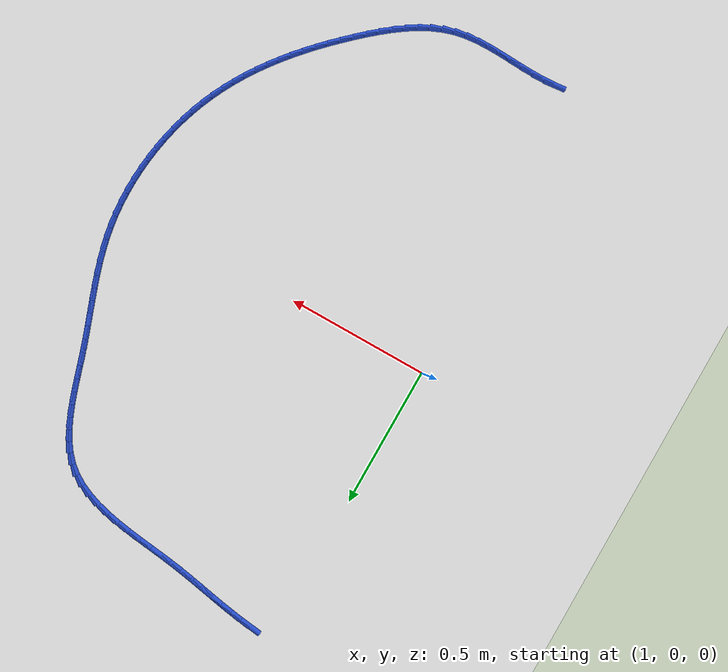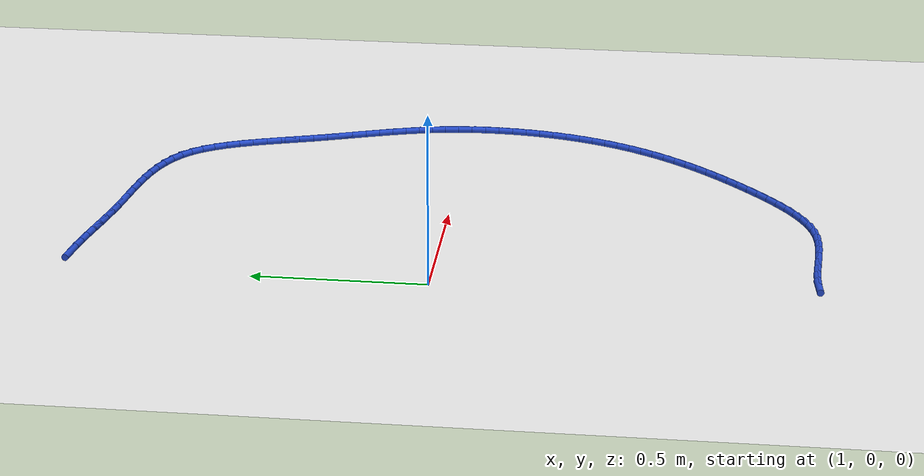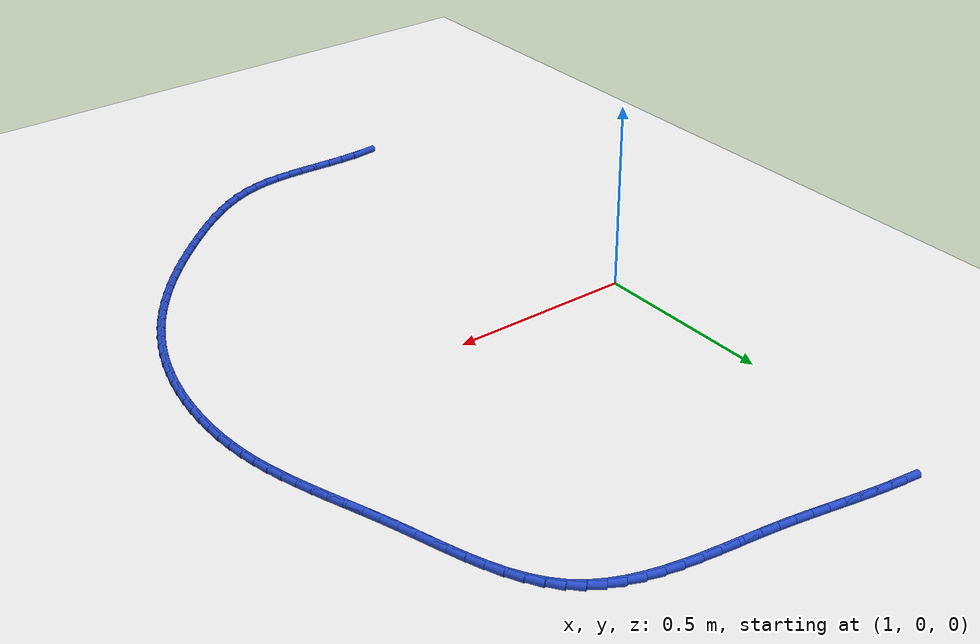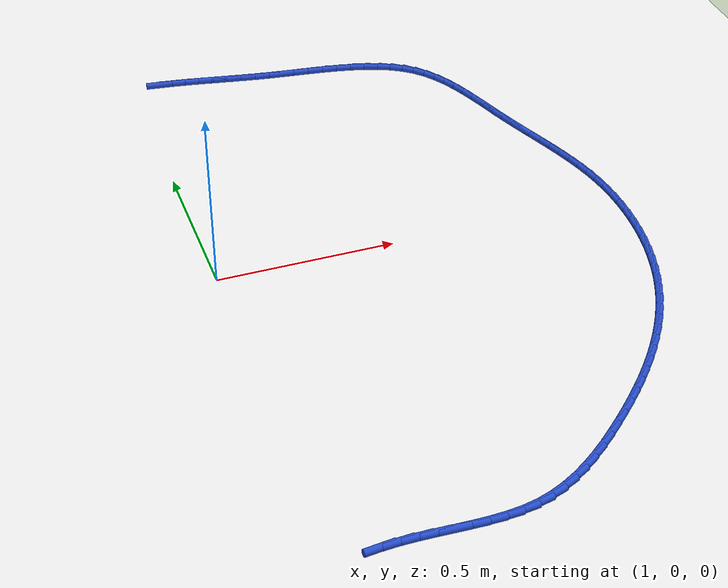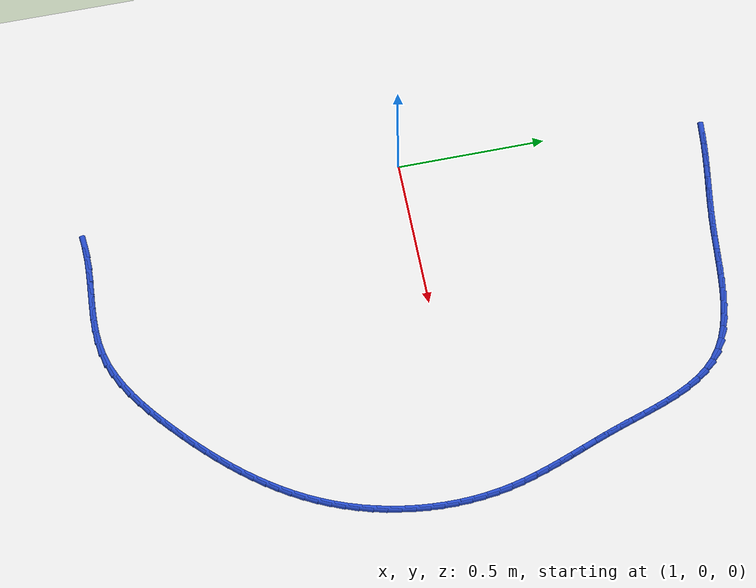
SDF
<sdf version="1.6">
 <world name="default">
  <model name="ground_plane">
   <static>1</static>
   <link name="link">
    <collision name="collision">
     <geometry><plane><normal>0 0 1</normal><size>100 100</size></plane></geometry>
     <surface><friction><ode><mu>100</mu><mu2>50</mu2></ode></friction></surface>
    </collision>
    <visual name="visual">
     <cast_shadows>0</cast_shadows>
     <geometry><plane><normal>0 0 1</normal><size>100 100</size></plane></geometry>
     <material>
      <script><uri>file://media/materials/scripts/gazebo.material</uri><name>Gazebo/WhiteGlow</name></script>
     </material>
    </visual>
   </link>
  </model>
  <model name="line">
   <link name="link_40">
    <pose>1.083983487072007 1.0317512045905965 0.01 0 1.57 -0.12247822357086942</pose>
    <collision name="collision">
     <geometry><cylinder><radius>0.01</radius><length>0.08</length></cylinder></geometry>
    </collision>
    <visual name="visual">
     <material>
      <script><name>Gazebo/Blue</name><uri>file://media/materials/scripts/gazebo.material</uri></script>
     </material>
     <geometry><cylinder><radius>0.01</radius><length>0.08</length></cylinder></geometry>
    </visual>
   </link>
   <link name="link_41">
    <pose>1.125646442639785 1.02662273018511 0.01 0 1.57 -0.1500103768400907</pose>
    <collision name="collision">
     <geometry><cylinder><radius>0.01</radius><length>0.08</length></cylinder></geometry>
    </collision>
    <visual name="visual">
     <material>
      <script><name>Gazebo/Blue</name><uri>file://media/materials/scripts/gazebo.material</uri></script>
     </material>
     <geometry><cylinder><radius>0.01</radius><length>0.08</length></cylinder></geometry>
    </visual>
   </link>
   <link name="link_42">
    <pose>1.1671397648547246 1.0203511874789246 0.01 0 1.57 -0.16982790035343945</pose>
    <collision name="collision">
     <geometry><cylinder><radius>0.01</radius><length>0.08</length></cylinder></geometry>
    </collision>
    <visual name="visual">
     <material>
      <script><name>Gazebo/Blue</name><uri>file://media/materials/scripts/gazebo.material</uri></script>
     </material>
     <geometry><cylinder><radius>0.01</radius><length>0.08</length></cylinder></geometry>
    </visual>
   </link>
   <link name="link_43">
    <pose>1.2086384210378591 1.01323501216494 0.01 0 1.57 -0.18181214256237524</pose>
    <collision name="collision">
     <geometry><cylinder><radius>0.01</radius><length>0.08</length></cylinder></geometry>
    </collision>
    <visual name="visual">
     <material>
      <script><name>Gazebo/Blue</name><uri>file://media/materials/scripts/gazebo.material</uri></script>
     </material>
     <geometry><cylinder><radius>0.01</radius><length>0.08</length></cylinder></geometry>
    </visual>
   </link>
   <link name="link_44">
    <pose>1.2503173876569167 1.0055726552251478 0.01 0 1.57 -0.18600665311869785</pose>
    <collision name="collision">
     <geometry><cylinder><radius>0.01</radius><length>0.08</length></cylinder></geometry>
    </collision>
    <visual name="visual">
     <material>
      <script><name>Gazebo/Blue</name><uri>file://media/materials/scripts/gazebo.material</uri></script>
     </material>
     <geometry><cylinder><radius>0.01</radius><length>0.08</length></cylinder></geometry>
    </visual>
   </link>
   <link name="link_45">
    <pose>1.292351641179624 0.9976625676415394 0.01 0 1.57 -0.18258944699541996</pose>
    <collision name="collision">
     <geometry><cylinder><radius>0.01</radius><length>0.08</length></cylinder></geometry>
    </collision>
    <visual name="visual">
     <material>
      <script><name>Gazebo/Blue</name><uri>file://media/materials/scripts/gazebo.material</uri></script>
     </material>
     <geometry><cylinder><radius>0.01</radius><length>0.08</length></cylinder></geometry>
    </visual>
   </link>
   <link name="link_46">
    <pose>1.3349161580737092 0.9898032003961066 0.01 0 1.57 -0.17185477720959072</pose>
    <collision name="collision">
     <geometry><cylinder><radius>0.01</radius><length>0.08</length></cylinder></geometry>
    </collision>
    <visual name="visual">
     <material>
      <script><name>Gazebo/Blue</name><uri>file://media/materials/scripts/gazebo.material</uri></script>
     </material>
     <geometry><cylinder><radius>0.01</radius><length>0.08</length></cylinder></geometry>
    </visual>
   </link>
   <link name="link_47">
    <pose>1.3781859148068998 0.9822930044708411 0.01 0 1.57 -0.15420377702841706</pose>
    <collision name="collision">
     <geometry><cylinder><radius>0.01</radius><length>0.08</length></cylinder></geometry>
    </collision>
    <visual name="visual">
     <material>
      <script><name>Gazebo/Blue</name><uri>file://media/materials/scripts/gazebo.material</uri></script>
     </material>
     <geometry><cylinder><radius>0.01</radius><length>0.08</length></cylinder></geometry>
    </visual>
   </link>
   <link name="link_48">
    <pose>1.4223358878469228 0.975430430847734 0.01 0 1.57 -0.13317774749445782</pose>
    <collision name="collision">
     <geometry><cylinder><radius>0.01</radius><length>0.08</length></cylinder></geometry>
    </collision>
    <visual name="visual">
     <material>
      <script><name>Gazebo/Blue</name><uri>file://media/materials/scripts/gazebo.material</uri></script>
     </material>
     <geometry><cylinder><radius>0.01</radius><length>0.08</length></cylinder></geometry>
    </visual>
   </link>
   <link name="link_49">
    <pose>1.4674420356015716 0.9693875271003631 0.01 0 1.57 -0.12176923726375755</pose>
    <collision name="collision">
     <geometry><cylinder><radius>0.01</radius><length>0.08</length></cylinder></geometry>
    </collision>
    <visual name="visual">
     <material>
      <script><name>Gazebo/Blue</name><uri>file://media/materials/scripts/gazebo.material</uri></script>
     </material>
     <geometry><cylinder><radius>0.01</radius><length>0.08</length></cylinder></geometry>
    </visual>
   </link>
   <link name="link_50">
    <pose>1.5131550162277354 0.9637934155889678 0.01 0 1.57 -0.12284945178763806</pose>
    <collision name="collision">
     <geometry><cylinder><radius>0.01</radius><length>0.08</length></cylinder></geometry>
    </collision>
    <visual name="visual">
     <material>
      <script><name>Gazebo/Blue</name><uri>file://media/materials/scripts/gazebo.material</uri></script>
     </material>
     <geometry><cylinder><radius>0.01</radius><length>0.08</length></cylinder></geometry>
    </visual>
   </link>
   <link name="link_51">
    <pose>1.5590113245453074 0.9581314812707133 0.01 0 1.57 -0.13632321833527564</pose>
    <collision name="collision">
     <geometry><cylinder><radius>0.01</radius><length>0.08</length></cylinder></geometry>
    </collision>
    <visual name="visual">
     <material>
      <script><name>Gazebo/Blue</name><uri>file://media/materials/scripts/gazebo.material</uri></script>
     </material>
     <geometry><cylinder><radius>0.01</radius><length>0.08</length></cylinder></geometry>
    </visual>
   </link>
   <link name="link_52">
    <pose>1.604547453953074 0.9518851072886262 0.01 0 1.57 -0.16272768667551943</pose>
    <collision name="collision">
     <geometry><cylinder><radius>0.01</radius><length>0.08</length></cylinder></geometry>
    </collision>
    <visual name="visual">
     <material>
      <script><name>Gazebo/Blue</name><uri>file://media/materials/scripts/gazebo.material</uri></script>
     </material>
     <geometry><cylinder><radius>0.01</radius><length>0.08</length></cylinder></geometry>
    </visual>
   </link>
   <link name="link_53">
    <pose>1.6492998978498241 0.9445376767857319 0.01 0 1.57 -0.20322471222318544</pose>
    <collision name="collision">
     <geometry><cylinder><radius>0.01</radius><length>0.08</length></cylinder></geometry>
    </collision>
    <visual name="visual">
     <material>
      <script><name>Gazebo/Blue</name><uri>file://media/materials/scripts/gazebo.material</uri></script>
     </material>
     <geometry><cylinder><radius>0.01</radius><length>0.08</length></cylinder></geometry>
    </visual>
   </link>
   <link name="link_54">
    <pose>1.6928051496343446 0.9355725729050577 0.01 0 1.57 -0.2595785811376601</pose>
    <collision name="collision">
     <geometry><cylinder><radius>0.01</radius><length>0.08</length></cylinder></geometry>
    </collision>
    <visual name="visual">
     <material>
      <script><name>Gazebo/Blue</name><uri>file://media/materials/scripts/gazebo.material</uri></script>
     </material>
     <geometry><cylinder><radius>0.01</radius><length>0.08</length></cylinder></geometry>
    </visual>
   </link>
   <link name="link_55">
    <pose>1.7345997027054234 0.9244731787896288 0.01 0 1.57 -0.3340456842501688</pose>
    <collision name="collision">
     <geometry><cylinder><radius>0.01</radius><length>0.08</length></cylinder></geometry>
    </collision>
    <visual name="visual">
     <material>
      <script><name>Gazebo/Blue</name><uri>file://media/materials/scripts/gazebo.material</uri></script>
     </material>
     <geometry><cylinder><radius>0.01</radius><length>0.08</length></cylinder></geometry>
    </visual>
   </link>
   <link name="link_56">
    <pose>1.7742200504618484 0.9107228775824721 0.01 0 1.57 -0.4290346965300316</pose>
    <collision name="collision">
     <geometry><cylinder><radius>0.01</radius><length>0.08</length></cylinder></geometry>
    </collision>
    <visual name="visual">
     <material>
      <script><name>Gazebo/Blue</name><uri>file://media/materials/scripts/gazebo.material</uri></script>
     </material>
     <geometry><cylinder><radius>0.01</radius><length>0.08</length></cylinder></geometry>
    </visual>
   </link>
   <link name="link_57">
    <pose>1.8112026863024073 0.8938050524266137 0.01 0 1.57 -0.5463255784357631</pose>
    <collision name="collision">
     <geometry><cylinder><radius>0.01</radius><length>0.08</length></cylinder></geometry>
    </collision>
    <visual name="visual">
     <material>
      <script><name>Gazebo/Blue</name><uri>file://media/materials/scripts/gazebo.material</uri></script>
     </material>
     <geometry><cylinder><radius>0.01</radius><length>0.08</length></cylinder></geometry>
    </visual>
   </link>
   <link name="link_58">
    <pose>1.8450841036258883 0.8732030864650793 0.01 0 1.57 -0.6856668858034809</pose>
    <collision name="collision">
     <geometry><cylinder><radius>0.01</radius><length>0.08</length></cylinder></geometry>
    </collision>
    <visual name="visual">
     <material>
      <script><name>Gazebo/Blue</name><uri>file://media/materials/scripts/gazebo.material</uri></script>
     </material>
     <geometry><cylinder><radius>0.01</radius><length>0.08</length></cylinder></geometry>
    </visual>
   </link>
   <link name="link_59">
    <pose>1.8754014627115032 0.8484011439334741 0.01 0 1.57 -0.8335406833218331</pose>
    <collision name="collision">
     <geometry><cylinder><radius>0.01</radius><length>0.08</length></cylinder></geometry>
    </collision>
    <visual name="visual">
     <material>
      <script><name>Gazebo/Blue</name><uri>file://media/materials/scripts/gazebo.material</uri></script>
     </material>
     <geometry><cylinder><radius>0.01</radius><length>0.08</length></cylinder></geometry>
    </visual>
   </link>
   <link name="link_60">
    <pose>1.9019408674390639 0.8191749675743611 0.01 0 1.57 -0.9607762577123368</pose>
    <collision name="collision">
     <geometry><cylinder><radius>0.01</radius><length>0.08</length></cylinder></geometry>
    </collision>
    <visual name="visual">
     <material>
      <script><name>Gazebo/Blue</name><uri>file://media/materials/scripts/gazebo.material</uri></script>
     </material>
     <geometry><cylinder><radius>0.01</radius><length>0.08</length></cylinder></geometry>
    </visual>
   </link>
   <link name="link_61">
    <pose>1.9251092667372205 0.7860274731604934 0.01 0 1.57 -1.06271174624357</pose>
    <collision name="collision">
     <geometry><cylinder><radius>0.01</radius><length>0.08</length></cylinder></geometry>
    </collision>
    <visual name="visual">
     <material>
      <script><name>Gazebo/Blue</name><uri>file://media/materials/scripts/gazebo.material</uri></script>
     </material>
     <geometry><cylinder><radius>0.01</radius><length>0.08</length></cylinder></geometry>
    </visual>
   </link>
   <link name="link_62">
    <pose>1.9454087881941964 0.749573055736984 0.01 0 1.57 -1.14123627584994</pose>
    <collision name="collision">
     <geometry><cylinder><radius>0.01</radius><length>0.08</length></cylinder></geometry>
    </collision>
    <visual name="visual">
     <material>
      <script><name>Gazebo/Blue</name><uri>file://media/materials/scripts/gazebo.material</uri></script>
     </material>
     <geometry><cylinder><radius>0.01</radius><length>0.08</length></cylinder></geometry>
    </visual>
   </link>
   <link name="link_63">
    <pose>1.963341559398216 0.7104261103489455 0.01 0 1.57 -1.1991430675300023</pose>
    <collision name="collision">
     <geometry><cylinder><radius>0.01</radius><length>0.08</length></cylinder></geometry>
    </collision>
    <visual name="visual">
     <material>
      <script><name>Gazebo/Blue</name><uri>file://media/materials/scripts/gazebo.material</uri></script>
     </material>
     <geometry><cylinder><radius>0.01</radius><length>0.08</length></cylinder></geometry>
    </visual>
   </link>
   <link name="link_64">
    <pose>1.9794097079375028 0.6692010320414907 0.01 0 1.57 -1.23904314193811</pose>
    <collision name="collision">
     <geometry><cylinder><radius>0.01</radius><length>0.08</length></cylinder></geometry>
    </collision>
    <visual name="visual">
     <material>
      <script><name>Gazebo/Blue</name><uri>file://media/materials/scripts/gazebo.material</uri></script>
     </material>
     <geometry><cylinder><radius>0.01</radius><length>0.08</length></cylinder></geometry>
    </visual>
   </link>
   <link name="link_65">
    <pose>1.9941153614002813 0.6265122158597322 0.01 0 1.57 -1.2629054993938276</pose>
    <collision name="collision">
     <geometry><cylinder><radius>0.01</radius><length>0.08</length></cylinder></geometry>
    </collision>
    <visual name="visual">
     <material>
      <script><name>Gazebo/Blue</name><uri>file://media/materials/scripts/gazebo.material</uri></script>
     </material>
     <geometry><cylinder><radius>0.01</radius><length>0.08</length></cylinder></geometry>
    </visual>
   </link>
   <link name="link_66">
    <pose>2.0079606473747766 0.5829740568487822 0.01 0 1.57 -1.271913490997217</pose>
    <collision name="collision">
     <geometry><cylinder><radius>0.01</radius><length>0.08</length></cylinder></geometry>
    </collision>
    <visual name="visual">
     <material>
      <script><name>Gazebo/Blue</name><uri>file://media/materials/scripts/gazebo.material</uri></script>
     </material>
     <geometry><cylinder><radius>0.01</radius><length>0.08</length></cylinder></geometry>
    </visual>
   </link>
   <link name="link_67">
    <pose>2.0214476934492116 0.5392009500537542 0.01 0 1.57 -1.2664338048668256</pose>
    <collision name="collision">
     <geometry><cylinder><radius>0.01</radius><length>0.08</length></cylinder></geometry>
    </collision>
    <visual name="visual">
     <material>
      <script><name>Gazebo/Blue</name><uri>file://media/materials/scripts/gazebo.material</uri></script>
     </material>
     <geometry><cylinder><radius>0.01</radius><length>0.08</length></cylinder></geometry>
    </visual>
   </link>
   <link name="link_68">
    <pose>2.03507862721181 0.4958072905197601 0.01 0 1.57 -1.2495818379929884</pose>
    <collision name="collision">
     <geometry><cylinder><radius>0.01</radius><length>0.08</length></cylinder></geometry>
    </collision>
    <visual name="visual">
     <material>
      <script><name>Gazebo/Blue</name><uri>file://media/materials/scripts/gazebo.material</uri></script>
     </material>
     <geometry><cylinder><radius>0.01</radius><length>0.08</length></cylinder></geometry>
    </visual>
   </link>
   <link name="link_69">
    <pose>2.049229341183821 0.4532791692977599 0.01 0 1.57 -1.2356742938745477</pose>
    <collision name="collision">
     <geometry><cylinder><radius>0.01</radius><length>0.08</length></cylinder></geometry>
    </collision>
    <visual name="visual">
     <material>
      <script><name>Gazebo/Blue</name><uri>file://media/materials/scripts/gazebo.material</uri></script>
     </material>
     <geometry><cylinder><radius>0.01</radius><length>0.08</length></cylinder></geometry>
    </visual>
   </link>
   <link name="link_70">
    <pose>2.0637540408442923 0.4115724402168727 0.01 0 1.57 -1.2288189067762425</pose>
    <collision name="collision">
     <geometry><cylinder><radius>0.01</radius><length>0.08</length></cylinder></geometry>
    </collision>
    <visual name="visual">
     <material>
      <script><name>Gazebo/Blue</name><uri>file://media/materials/scripts/gazebo.material</uri></script>
     </material>
     <geometry><cylinder><radius>0.01</radius><length>0.08</length></cylinder></geometry>
    </visual>
   </link>
   <link name="link_71">
    <pose>2.0783721852925976 0.37050600230337233 0.01 0 1.57 -1.2293357264124927</pose>
    <collision name="collision">
     <geometry><cylinder><radius>0.01</radius><length>0.08</length></cylinder></geometry>
    </collision>
    <visual name="visual">
     <material>
      <script><name>Gazebo/Blue</name><uri>file://media/materials/scripts/gazebo.material</uri></script>
     </material>
     <geometry><cylinder><radius>0.01</radius><length>0.08</length></cylinder></geometry>
    </visual>
   </link>
   <link name="link_72">
    <pose>2.092803233460333 0.3298987544130059 0.01 0 1.57 -1.2374785730630937</pose>
    <collision name="collision">
     <geometry><cylinder><radius>0.01</radius><length>0.08</length></cylinder></geometry>
    </collision>
    <visual name="visual">
     <material>
      <script><name>Gazebo/Blue</name><uri>file://media/materials/scripts/gazebo.material</uri></script>
     </material>
     <geometry><cylinder><radius>0.01</radius><length>0.08</length></cylinder></geometry>
    </visual>
   </link>
   <link name="link_73">
    <pose>2.106766644279096 0.28956959540151983 0.01 0 1.57 -1.2534253010028966</pose>
    <collision name="collision">
     <geometry><cylinder><radius>0.01</radius><length>0.08</length></cylinder></geometry>
    </collision>
    <visual name="visual">
     <material>
      <script><name>Gazebo/Blue</name><uri>file://media/materials/scripts/gazebo.material</uri></script>
     </material>
     <geometry><cylinder><radius>0.01</radius><length>0.08</length></cylinder></geometry>
    </visual>
   </link>
   <link name="link_74">
    <pose>2.1199818766804817 0.24933742412466106 0.01 0 1.57 -1.277255777201477</pose>
    <collision name="collision">
     <geometry><cylinder><radius>0.01</radius><length>0.08</length></cylinder></geometry>
    </collision>
    <visual name="visual">
     <material>
      <script><name>Gazebo/Blue</name><uri>file://media/materials/scripts/gazebo.material</uri></script>
     </material>
     <geometry><cylinder><radius>0.01</radius><length>0.08</length></cylinder></geometry>
    </visual>
   </link>
   <link name="link_75">
    <pose>2.132168389596088 0.20902113943817624 0.01 0 1.57 -1.3089171061765383</pose>
    <collision name="collision">
     <geometry><cylinder><radius>0.01</radius><length>0.08</length></cylinder></geometry>
    </collision>
    <visual name="visual">
     <material>
      <script><name>Gazebo/Blue</name><uri>file://media/materials/scripts/gazebo.material</uri></script>
     </material>
     <geometry><cylinder><radius>0.01</radius><length>0.08</length></cylinder></geometry>
    </visual>
   </link>
   <link name="link_76">
    <pose>2.1430456419575092 0.16843964019781157 0.01 0 1.57 -1.3481786466173165</pose>
    <collision name="collision">
     <geometry><cylinder><radius>0.01</radius><length>0.08</length></cylinder></geometry>
    </collision>
    <visual name="visual">
     <material>
      <script><name>Gazebo/Blue</name><uri>file://media/materials/scripts/gazebo.material</uri></script>
     </material>
     <geometry><cylinder><radius>0.01</radius><length>0.08</length></cylinder></geometry>
    </visual>
   </link>
   <link name="link_77">
    <pose>2.152333092696343 0.12741182525931447 0.01 0 1.57 -1.3944954492274293</pose>
    <collision name="collision">
     <geometry><cylinder><radius>0.01</radius><length>0.08</length></cylinder></geometry>
    </collision>
    <visual name="visual">
     <material>
      <script><name>Gazebo/Blue</name><uri>file://media/materials/scripts/gazebo.material</uri></script>
     </material>
     <geometry><cylinder><radius>0.01</radius><length>0.08</length></cylinder></geometry>
    </visual>
   </link>
   <link name="link_78">
    <pose>2.159753386915946 0.08575998920282493 0.01 0 1.57 -1.443855087470023</pose>
    <collision name="collision">
     <geometry><cylinder><radius>0.01</radius><length>0.08</length></cylinder></geometry>
    </collision>
    <visual name="visual">
     <material>
      <script><name>Gazebo/Blue</name><uri>file://media/materials/scripts/gazebo.material</uri></script>
     </material>
     <geometry><cylinder><radius>0.01</radius><length>0.08</length></cylinder></geometry>
    </visual>
   </link>
   <link name="link_79">
    <pose>2.1651545720003553 0.04344007652303903 0.01 0 1.57 -1.4917703493942212</pose>
    <collision name="collision">
     <geometry><cylinder><radius>0.01</radius><length>0.08</length></cylinder></geometry>
    </collision>
    <visual name="visual">
     <material>
      <script><name>Gazebo/Blue</name><uri>file://media/materials/scripts/gazebo.material</uri></script>
     </material>
     <geometry><cylinder><radius>0.01</radius><length>0.08</length></cylinder></geometry>
    </visual>
   </link>
   <link name="link_80">
    <pose>2.168548493801691 0.0005826031111612502 0.01 0 1.57 -1.5382193664108703</pose>
    <collision name="collision">
     <geometry><cylinder><radius>0.01</radius><length>0.08</length></cylinder></geometry>
    </collision>
    <visual name="visual">
     <material>
      <script><name>Gazebo/Blue</name><uri>file://media/materials/scripts/gazebo.material</uri></script>
     </material>
     <geometry><cylinder><radius>0.01</radius><length>0.08</length></cylinder></geometry>
    </visual>
   </link>
   <link name="link_81">
    <pose>2.1699580357442185 -0.042670151634863575 0.01 0 1.57 1.5581100773626504</pose>
    <collision name="collision">
     <geometry><cylinder><radius>0.01</radius><length>0.08</length></cylinder></geometry>
    </collision>
    <visual name="visual">
     <material>
      <script><name>Gazebo/Blue</name><uri>file://media/materials/scripts/gazebo.material</uri></script>
     </material>
     <geometry><cylinder><radius>0.01</radius><length>0.08</length></cylinder></geometry>
    </visual>
   </link>
   <link name="link_82">
    <pose>2.1694060812522027 -0.08617590831709118 0.01 0 1.57 1.5137567415646203</pose>
    <collision name="collision">
     <geometry><cylinder><radius>0.01</radius><length>0.08</length></cylinder></geometry>
    </collision>
    <visual name="visual">
     <material>
      <script><name>Gazebo/Blue</name><uri>file://media/materials/scripts/gazebo.material</uri></script>
     </material>
     <geometry><cylinder><radius>0.01</radius><length>0.08</length></cylinder></geometry>
    </visual>
   </link>
   <link name="link_83">
    <pose>2.166915513749909 -0.12979238753757527 0.01 0 1.57 1.470041831396794</pose>
    <collision name="collision">
     <geometry><cylinder><radius>0.01</radius><length>0.08</length></cylinder></geometry>
    </collision>
    <visual name="visual">
     <material>
      <script><name>Gazebo/Blue</name><uri>file://media/materials/scripts/gazebo.material</uri></script>
     </material>
     <geometry><cylinder><radius>0.01</radius><length>0.08</length></cylinder></geometry>
    </visual>
   </link>
   <link name="link_84">
    <pose>2.1625092166616025 -0.17337730989837155 0.01 0 1.57 1.4266975741182388</pose>
    <collision name="collision">
     <geometry><cylinder><radius>0.01</radius><length>0.08</length></cylinder></geometry>
    </collision>
    <visual name="visual">
     <material>
      <script><name>Gazebo/Blue</name><uri>file://media/materials/scripts/gazebo.material</uri></script>
     </material>
     <geometry><cylinder><radius>0.01</radius><length>0.08</length></cylinder></geometry>
    </visual>
   </link>
   <link name="link_85">
    <pose>2.1562100734115486 -0.21678839600153524 0.01 0 1.57 1.383458560040371</pose>
    <collision name="collision">
     <geometry><cylinder><radius>0.01</radius><length>0.08</length></cylinder></geometry>
    </collision>
    <visual name="visual">
     <material>
      <script><name>Gazebo/Blue</name><uri>file://media/materials/scripts/gazebo.material</uri></script>
     </material>
     <geometry><cylinder><radius>0.01</radius><length>0.08</length></cylinder></geometry>
    </visual>
   </link>
   <link name="link_86">
    <pose>2.1480409674240124 -0.25988336644912124 0.01 0 1.57 1.3400601585265963</pose>
    <collision name="collision">
     <geometry><cylinder><radius>0.01</radius><length>0.08</length></cylinder></geometry>
    </collision>
    <visual name="visual">
     <material>
      <script><name>Gazebo/Blue</name><uri>file://media/materials/scripts/gazebo.material</uri></script>
     </material>
     <geometry><cylinder><radius>0.01</radius><length>0.08</length></cylinder></geometry>
    </visual>
   </link>
   <link name="link_87">
    <pose>2.1380247821232596 -0.30251994184318565 0.01 0 1.57 1.2962368630337653</pose>
    <collision name="collision">
     <geometry><cylinder><radius>0.01</radius><length>0.08</length></cylinder></geometry>
    </collision>
    <visual name="visual">
     <material>
      <script><name>Gazebo/Blue</name><uri>file://media/materials/scripts/gazebo.material</uri></script>
     </material>
     <geometry><cylinder><radius>0.01</radius><length>0.08</length></cylinder></geometry>
    </visual>
   </link>
   <link name="link_88">
    <pose>2.1261844009335547 -0.3445558427857819 0.01 0 1.57 1.251720756557947</pose>
    <collision name="collision">
     <geometry><cylinder><radius>0.01</radius><length>0.08</length></cylinder></geometry>
    </collision>
    <visual name="visual">
     <material>
      <script><name>Gazebo/Blue</name><uri>file://media/materials/scripts/gazebo.material</uri></script>
     </material>
     <geometry><cylinder><radius>0.01</radius><length>0.08</length></cylinder></geometry>
    </visual>
   </link>
   <link name="link_89">
    <pose>2.1125427072791627 -0.3858487898789658 0.01 0 1.57 1.206240302165475</pose>
    <collision name="collision">
     <geometry><cylinder><radius>0.01</radius><length>0.08</length></cylinder></geometry>
    </collision>
    <visual name="visual">
     <material>
      <script><name>Gazebo/Blue</name><uri>file://media/materials/scripts/gazebo.material</uri></script>
     </material>
     <geometry><cylinder><radius>0.01</radius><length>0.08</length></cylinder></geometry>
    </visual>
   </link>
   <link name="link_90">
    <pose>2.0971225845843495 -0.4262565037247925 0.01 0 1.57 1.1597564878604112</pose>
    <collision name="collision">
     <geometry><cylinder><radius>0.01</radius><length>0.08</length></cylinder></geometry>
    </collision>
    <visual name="visual">
     <material>
      <script><name>Gazebo/Blue</name><uri>file://media/materials/scripts/gazebo.material</uri></script>
     </material>
     <geometry><cylinder><radius>0.01</radius><length>0.08</length></cylinder></geometry>
    </visual>
   </link>
   <link name="link_91">
    <pose>2.0799512689970343 -0.4656521792221021 0.01 0 1.57 1.1139763138434269</pose>
    <collision name="collision">
     <geometry><cylinder><radius>0.01</radius><length>0.08</length></cylinder></geometry>
    </collision>
    <visual name="visual">
     <material>
      <script><name>Gazebo/Blue</name><uri>file://media/materials/scripts/gazebo.material</uri></script>
     </material>
     <geometry><cylinder><radius>0.01</radius><length>0.08</length></cylinder></geometry>
    </visual>
   </link>
   <link name="link_92">
    <pose>2.061089576231679 -0.5040283894384151 0.01 0 1.57 1.069946972383271</pose>
    <collision name="collision">
     <geometry><cylinder><radius>0.01</radius><length>0.08</length></cylinder></geometry>
    </collision>
    <visual name="visual">
     <material>
      <script><name>Gazebo/Blue</name><uri>file://media/materials/scripts/gazebo.material</uri></script>
     </material>
     <geometry><cylinder><radius>0.01</radius><length>0.08</length></cylinder></geometry>
    </visual>
   </link>
   <link name="link_93">
    <pose>2.0406139425605363 -0.5414332398311661 0.01 0 1.57 1.0278831804259319</pose>
    <collision name="collision">
     <geometry><cylinder><radius>0.01</radius><length>0.08</length></cylinder></geometry>
    </collision>
    <visual name="visual">
     <material>
      <script><name>Gazebo/Blue</name><uri>file://media/materials/scripts/gazebo.material</uri></script>
     </material>
     <geometry><cylinder><radius>0.01</radius><length>0.08</length></cylinder></geometry>
    </visual>
   </link>
   <link name="link_94">
    <pose>2.018600891013832 -0.5779151442896575 0.01 0 1.57 0.9879501163792187</pose>
    <collision name="collision">
     <geometry><cylinder><radius>0.01</radius><length>0.08</length></cylinder></geometry>
    </collision>
    <visual name="visual">
     <material>
      <script><name>Gazebo/Blue</name><uri>file://media/materials/scripts/gazebo.material</uri></script>
     </material>
     <geometry><cylinder><radius>0.01</radius><length>0.08</length></cylinder></geometry>
    </visual>
   </link>
   <link name="link_95">
    <pose>1.9951269446217945 -0.613522516703192 0.01 0 1.57 0.9502696055086657</pose>
    <collision name="collision">
     <geometry><cylinder><radius>0.01</radius><length>0.08</length></cylinder></geometry>
    </collision>
    <visual name="visual">
     <material>
      <script><name>Gazebo/Blue</name><uri>file://media/materials/scripts/gazebo.material</uri></script>
     </material>
     <geometry><cylinder><radius>0.01</radius><length>0.08</length></cylinder></geometry>
    </visual>
   </link>
   <link name="link_96">
    <pose>1.9702686264146507 -0.6483037709610725 0.01 0 1.57 0.9149235375658327</pose>
    <collision name="collision">
     <geometry><cylinder><radius>0.01</radius><length>0.08</length></cylinder></geometry>
    </collision>
    <visual name="visual">
     <material>
      <script><name>Gazebo/Blue</name><uri>file://media/materials/scripts/gazebo.material</uri></script>
     </material>
     <geometry><cylinder><radius>0.01</radius><length>0.08</length></cylinder></geometry>
    </visual>
   </link>
   <link name="link_97">
    <pose>1.944102459422629 -0.6823073209525998 0.01 0 1.57 0.8819585963363001</pose>
    <collision name="collision">
     <geometry><cylinder><radius>0.01</radius><length>0.08</length></cylinder></geometry>
    </collision>
    <visual name="visual">
     <material>
      <script><name>Gazebo/Blue</name><uri>file://media/materials/scripts/gazebo.material</uri></script>
     </material>
     <geometry><cylinder><radius>0.01</radius><length>0.08</length></cylinder></geometry>
    </visual>
   </link>
   <link name="link_98">
    <pose>1.9167049666759566 -0.7155815805670764 0.01 0 1.57 0.8513916977643653</pose>
    <collision name="collision">
     <geometry><cylinder><radius>0.01</radius><length>0.08</length></cylinder></geometry>
    </collision>
    <visual name="visual">
     <material>
      <script><name>Gazebo/Blue</name><uri>file://media/materials/scripts/gazebo.material</uri></script>
     </material>
     <geometry><cylinder><radius>0.01</radius><length>0.08</length></cylinder></geometry>
    </visual>
   </link>
   <link name="link_99">
    <pose>1.8881526712048609 -0.7481749636938055 0.01 0 1.57 0.8232156300456992</pose>
    <collision name="collision">
     <geometry><cylinder><radius>0.01</radius><length>0.08</length></cylinder></geometry>
    </collision>
    <visual name="visual">
     <material>
      <script><name>Gazebo/Blue</name><uri>file://media/materials/scripts/gazebo.material</uri></script>
     </material>
     <geometry><cylinder><radius>0.01</radius><length>0.08</length></cylinder></geometry>
    </visual>
   </link>
   <link name="link_100">
    <pose>1.8585220960395699 -0.7801358842220887 0.01 0 1.57 0.7974045135838627</pose>
    <collision name="collision">
     <geometry><cylinder><radius>0.01</radius><length>0.08</length></cylinder></geometry>
    </collision>
    <visual name="visual">
     <material>
      <script><name>Gazebo/Blue</name><uri>file://media/materials/scripts/gazebo.material</uri></script>
     </material>
     <geometry><cylinder><radius>0.01</radius><length>0.08</length></cylinder></geometry>
    </visual>
   </link>
   <link name="link_101">
    <pose>1.8278897642103102 -0.8115127560412287 0.01 0 1.57 0.7739188245258833</pose>
    <collision name="collision">
     <geometry><cylinder><radius>0.01</radius><length>0.08</length></cylinder></geometry>
    </collision>
    <visual name="visual">
     <material>
      <script><name>Gazebo/Blue</name><uri>file://media/materials/scripts/gazebo.material</uri></script>
     </material>
     <geometry><cylinder><radius>0.01</radius><length>0.08</length></cylinder></geometry>
    </visual>
   </link>
   <link name="link_102">
    <pose>1.7963321987473104 -0.842353993040527 0.01 0 1.57 0.752709835937904</pose>
    <collision name="collision">
     <geometry><cylinder><radius>0.01</radius><length>0.08</length></cylinder></geometry>
    </collision>
    <visual name="visual">
     <material>
      <script><name>Gazebo/Blue</name><uri>file://media/materials/scripts/gazebo.material</uri></script>
     </material>
     <geometry><cylinder><radius>0.01</radius><length>0.08</length></cylinder></geometry>
    </visual>
   </link>
   <link name="link_103">
    <pose>1.763925922680798 -0.8727080091092861 0.01 0 1.57 0.7329628677408049</pose>
    <collision name="collision">
     <geometry><cylinder><radius>0.01</radius><length>0.08</length></cylinder></geometry>
    </collision>
    <visual name="visual">
     <material>
      <script><name>Gazebo/Blue</name><uri>file://media/materials/scripts/gazebo.material</uri></script>
     </material>
     <geometry><cylinder><radius>0.01</radius><length>0.08</length></cylinder></geometry>
    </visual>
   </link>
   <link name="link_104">
    <pose>1.7307399982642915 -0.90258421805187 0.01 0 1.57 0.7075977823602653</pose>
    <collision name="collision">
     <geometry><cylinder><radius>0.01</radius><length>0.08</length></cylinder></geometry>
    </collision>
    <visual name="visual">
     <material>
      <script><name>Gazebo/Blue</name><uri>file://media/materials/scripts/gazebo.material</uri></script>
     </material>
     <geometry><cylinder><radius>0.01</radius><length>0.08</length></cylinder></geometry>
    </visual>
   </link>
   <link name="link_105">
    <pose>1.6967754118751421 -0.9316361772978315 0.01 0 1.57 0.6724204169683607</pose>
    <collision name="collision">
     <geometry><cylinder><radius>0.01</radius><length>0.08</length></cylinder></geometry>
    </collision>
    <visual name="visual">
     <material>
      <script><name>Gazebo/Blue</name><uri>file://media/materials/scripts/gazebo.material</uri></script>
     </material>
     <geometry><cylinder><radius>0.01</radius><length>0.08</length></cylinder></geometry>
    </visual>
   </link>
   <link name="link_106">
    <pose>1.6619967212236175 -0.9593270189140735 0.01 0 1.57 0.6265780315938196</pose>
    <collision name="collision">
     <geometry><cylinder><radius>0.01</radius><length>0.08</length></cylinder></geometry>
    </collision>
    <visual name="visual">
     <material>
      <script><name>Gazebo/Blue</name><uri>file://media/materials/scripts/gazebo.material</uri></script>
     </material>
     <geometry><cylinder><radius>0.01</radius><length>0.08</length></cylinder></geometry>
    </visual>
   </link>
   <link name="link_107">
    <pose>1.6263681393497675 -0.9851180732559036 0.01 0 1.57 0.5689919894382092</pose>
    <collision name="collision">
     <geometry><cylinder><radius>0.01</radius><length>0.08</length></cylinder></geometry>
    </collision>
    <visual name="visual">
     <material>
      <script><name>Gazebo/Blue</name><uri>file://media/materials/scripts/gazebo.material</uri></script>
     </material>
     <geometry><cylinder><radius>0.01</radius><length>0.08</length></cylinder></geometry>
    </visual>
   </link>
   <link name="link_108">
    <pose>1.5898538792936392 -1.0084706706786306 0.01 0 1.57 0.4984401110352615</pose>
    <collision name="collision">
     <geometry><cylinder><radius>0.01</radius><length>0.08</length></cylinder></geometry>
    </collision>
    <visual name="visual">
     <material>
      <script><name>Gazebo/Blue</name><uri>file://media/materials/scripts/gazebo.material</uri></script>
     </material>
     <geometry><cylinder><radius>0.01</radius><length>0.08</length></cylinder></geometry>
    </visual>
   </link>
   <link name="link_109">
    <pose>1.5524181540952802 -1.028846141537563 0.01 0 1.57 0.4137813897429138</pose>
    <collision name="collision">
     <geometry><cylinder><radius>0.01</radius><length>0.08</length></cylinder></geometry>
    </collision>
    <visual name="visual">
     <material>
      <script><name>Gazebo/Blue</name><uri>file://media/materials/scripts/gazebo.material</uri></script>
     </material>
     <geometry><cylinder><radius>0.01</radius><length>0.08</length></cylinder></geometry>
    </visual>
   </link>
   <link name="link_110">
    <pose>1.5140251767947384 -1.0457058161880095 0.01 0 1.57 0.3143410547543896</pose>
    <collision name="collision">
     <geometry><cylinder><radius>0.01</radius><length>0.08</length></cylinder></geometry>
    </collision>
    <visual name="visual">
     <material>
      <script><name>Gazebo/Blue</name><uri>file://media/materials/scripts/gazebo.material</uri></script>
     </material>
     <geometry><cylinder><radius>0.01</radius><length>0.08</length></cylinder></geometry>
    </visual>
   </link>
   <link name="link_111">
    <pose>1.4746391604320603 -1.058511024985278 0.01 0 1.57 0.2044373720941423</pose>
    <collision name="collision">
     <geometry><cylinder><radius>0.01</radius><length>0.08</length></cylinder></geometry>
    </collision>
    <visual name="visual">
     <material>
      <script><name>Gazebo/Blue</name><uri>file://media/materials/scripts/gazebo.material</uri></script>
     </material>
     <geometry><cylinder><radius>0.01</radius><length>0.08</length></cylinder></geometry>
    </visual>
   </link>
   <link name="link_112">
    <pose>1.4342427547234813 -1.0668865707324413 0.01 0 1.57 0.10860459932291344</pose>
    <collision name="collision">
     <geometry><cylinder><radius>0.01</radius><length>0.08</length></cylinder></geometry>
    </collision>
    <visual name="visual">
     <material>
      <script><name>Gazebo/Blue</name><uri>file://media/materials/scripts/gazebo.material</uri></script>
     </material>
     <geometry><cylinder><radius>0.01</radius><length>0.08</length></cylinder></geometry>
    </visual>
   </link>
   <link name="link_113">
    <pose>1.3929239978906964 -1.071391704328437 0.01 0 1.57 0.03620486685464477</pose>
    <collision name="collision">
     <geometry><cylinder><radius>0.01</radius><length>0.08</length></cylinder></geometry>
    </collision>
    <visual name="visual">
     <material>
      <script><name>Gazebo/Blue</name><uri>file://media/materials/scripts/gazebo.material</uri></script>
     </material>
     <geometry><cylinder><radius>0.01</radius><length>0.08</length></cylinder></geometry>
    </visual>
   </link>
   <link name="link_114">
    <pose>1.3508083137700564 -1.0729171636429193 0.01 0 1.57 -0.0131593848439148</pose>
    <collision name="collision">
     <geometry><cylinder><radius>0.01</radius><length>0.08</length></cylinder></geometry>
    </collision>
    <visual name="visual">
     <material>
      <script><name>Gazebo/Blue</name><uri>file://media/materials/scripts/gazebo.material</uri></script>
     </material>
     <geometry><cylinder><radius>0.01</radius><length>0.08</length></cylinder></geometry>
    </visual>
   </link>
   <link name="link_115">
    <pose>1.3080211704204903 -1.0723540786538037 0.01 0 1.57 -0.040604763277305875</pose>
    <collision name="collision">
     <geometry><cylinder><radius>0.01</radius><length>0.08</length></cylinder></geometry>
    </collision>
    <visual name="visual">
     <material>
      <script><name>Gazebo/Blue</name><uri>file://media/materials/scripts/gazebo.material</uri></script>
     </material>
     <geometry><cylinder><radius>0.01</radius><length>0.08</length></cylinder></geometry>
    </visual>
   </link>
   <link name="link_116">
    <pose>1.2646880359009247 -1.0705935793390036 0.01 0 1.57 -0.04720173380937839</pose>
    <collision name="collision">
     <geometry><cylinder><radius>0.01</radius><length>0.08</length></cylinder></geometry>
    </collision>
    <visual name="visual">
     <material>
      <script><name>Gazebo/Blue</name><uri>file://media/materials/scripts/gazebo.material</uri></script>
     </material>
     <geometry><cylinder><radius>0.01</radius><length>0.08</length></cylinder></geometry>
    </visual>
   </link>
   <link name="link_117">
    <pose>1.2209343782702886 -1.068526795676433 0.01 0 1.57 -0.03363047873454703</pose>
    <collision name="collision">
     <geometry><cylinder><radius>0.01</radius><length>0.08</length></cylinder></geometry>
    </collision>
    <visual name="visual">
     <material>
      <script><name>Gazebo/Blue</name><uri>file://media/materials/scripts/gazebo.material</uri></script>
     </material>
     <geometry><cylinder><radius>0.01</radius><length>0.08</length></cylinder></geometry>
    </visual>
   </link>
   <link name="link_118">
    <pose>1.17688566558751 -1.0670448576440068 0.01 0 1.57 -0.00013484065138461056</pose>
    <collision name="collision">
     <geometry><cylinder><radius>0.01</radius><length>0.08</length></cylinder></geometry>
    </collision>
    <visual name="visual">
     <material>
      <script><name>Gazebo/Blue</name><uri>file://media/materials/scripts/gazebo.material</uri></script>
     </material>
     <geometry><cylinder><radius>0.01</radius><length>0.08</length></cylinder></geometry>
    </visual>
   </link>
   <link name="link_119">
    <pose>1.1326673659115167 -1.0670388952196392 0.01 0 1.57 0.0525069403819948</pose>
    <collision name="collision">
     <geometry><cylinder><radius>0.01</radius><length>0.08</length></cylinder></geometry>
    </collision>
    <visual name="visual">
     <material>
      <script><name>Gazebo/Blue</name><uri>file://media/materials/scripts/gazebo.material</uri></script>
     </material>
     <geometry><cylinder><radius>0.01</radius><length>0.08</length></cylinder></geometry>
    </visual>
   </link>
   <link name="link_120">
    <pose>1.0884051640279877 -1.0693651061795606 0.01 0 1.57 0.10476956773475184</pose>
    <collision name="collision">
     <geometry><cylinder><radius>0.01</radius><length>0.08</length></cylinder></geometry>
    </collision>
    <visual name="visual">
     <material>
      <script><name>Gazebo/Blue</name><uri>file://media/materials/scripts/gazebo.material</uri></script>
     </material>
     <geometry><cylinder><radius>0.01</radius><length>0.08</length></cylinder></geometry>
    </visual>
   </link>
  </model>
 </world>
</sdf>
